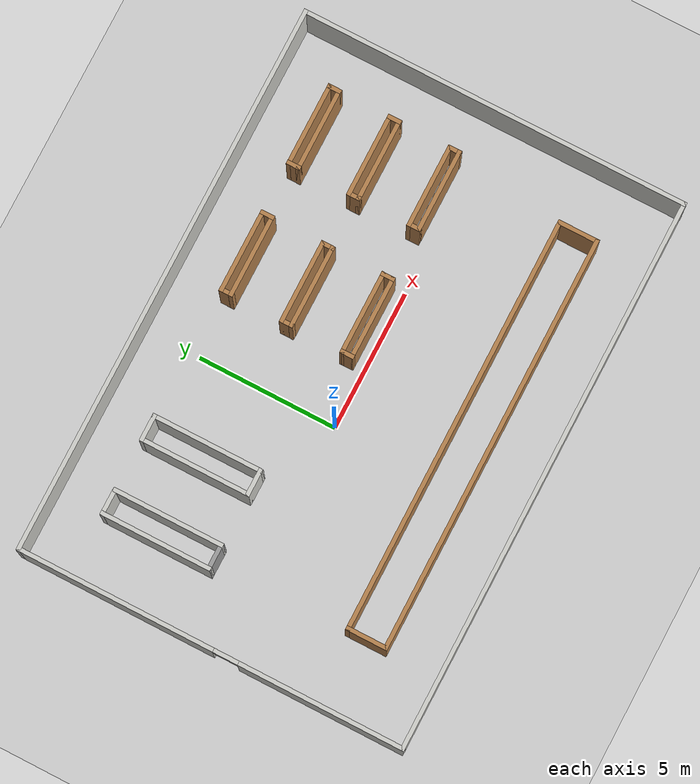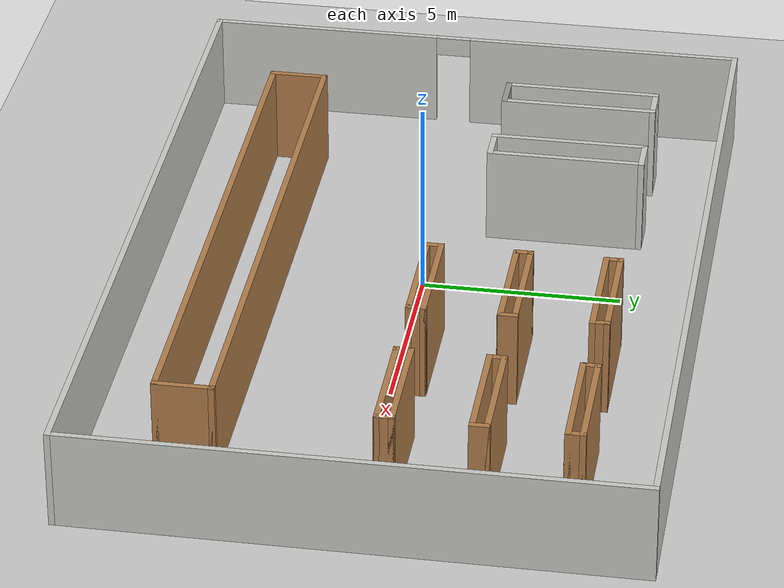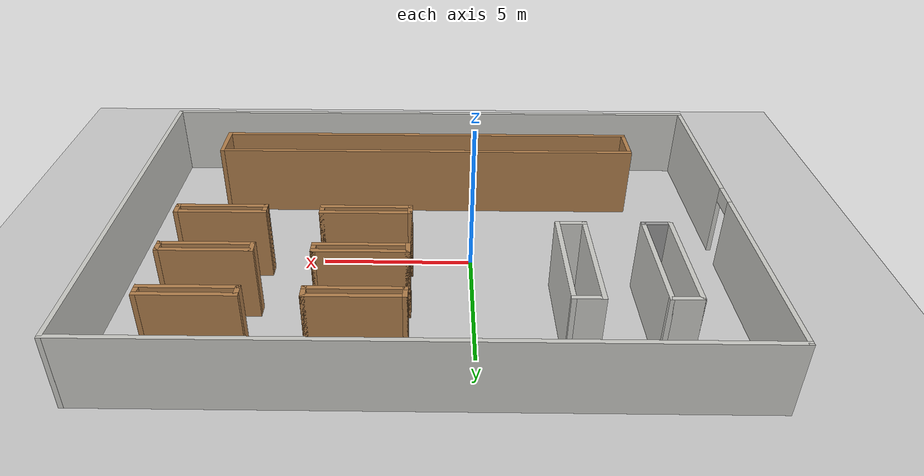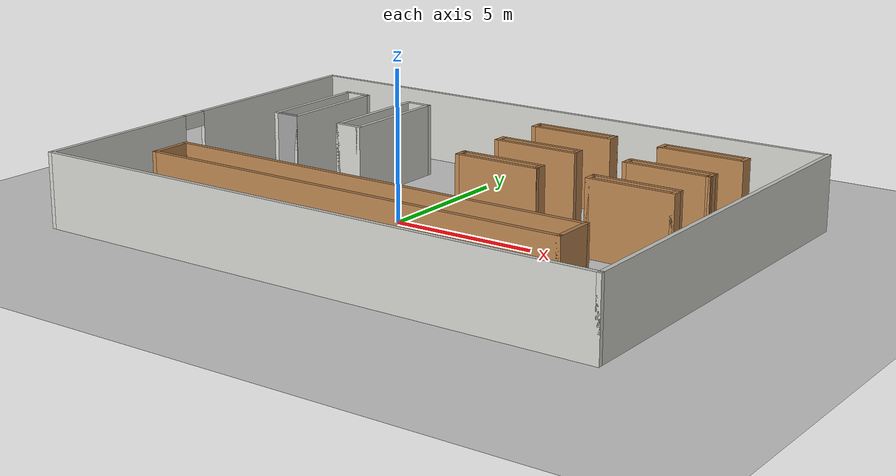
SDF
<sdf version="1.7">
 <world name="default">
  <light name="sun" type="directional">
   <pose>0 0 10 0 -0 0</pose>
   <diffuse>0.8 0.8 0.8 1</diffuse>
   <specular>0.2 0.2 0.2 1</specular>
   <attenuation>
    <range>1000</range>
    <constant>0.9</constant>
    <linear>0.01</linear>
    <quadratic>0.001</quadratic>
   </attenuation>
   <direction>-0.5 0.1 -0.9</direction>
   <spot><inner_angle>0</inner_angle><outer_angle>0</outer_angle><falloff>0</falloff></spot>
  </light>
  <model name="ground_plane">
   <static>1</static>
   <link name="link">
    <collision name="collision">
     <geometry><plane><normal>0 0 1</normal><size>100 100</size></plane></geometry>
     <surface><friction><ode><mu>100</mu><mu2>50</mu2></ode></friction></surface>
    </collision>
    <visual name="visual">
     <cast_shadows>0</cast_shadows>
     <geometry><plane><normal>0 0 1</normal><size>100 100</size></plane></geometry>
     <material>
      <script><uri>file://media/materials/scripts/gazebo.material</uri><name>Gazebo/Grey</name></script>
     </material>
    </visual>
   </link>
  </model>
  <gravity>0 0 -9.8</gravity>
  <magnetic_field>6e-06 2.3e-05 -4.2e-05</magnetic_field>
  <atmosphere type="adiabatic"/>
  <physics type="ode">
   <max_step_size>0.001</max_step_size>
   <real_time_factor>1</real_time_factor>
   <real_time_update_rate>1000</real_time_update_rate>
  </physics>
  <scene><ambient>0.4 0.4 0.4 1</ambient><background>0.7 0.7 0.7 1</background><shadows>1</shadows></scene>
  <audio><device>default</device></audio>
  <spherical_coordinates>
   <surface_model>EARTH_WGS84</surface_model>
   <latitude_deg>0</latitude_deg>
   <longitude_deg>0</longitude_deg>
   <elevation>0</elevation>
   <heading_deg>0</heading_deg>
  </spherical_coordinates>
  <model name="warehouse">
   <pose>1.50702 0.101425 0 0 -0 0</pose>
   <link name="Wall_0">
    <collision name="Wall_0_Collision">
     <geometry><box><size>3 0.15 2.5</size></box></geometry>
     <pose>0 0 1.25 0 -0 0</pose>
    </collision>
    <visual name="Wall_0_Visual">
     <pose>0 0 1.25 0 -0 0</pose>
     <geometry><box><size>3 0.15 2.5</size></box></geometry>
     <material>
      <script><uri>file://media/materials/scripts/gazebo.material</uri><name>Gazebo/Wood</name></script>
      <ambient>1 1 1 1</ambient>
     </material>
     <meta><layer>0</layer></meta>
    </visual>
    <pose>1.95 0.675 0 0 -0 0</pose>
   </link>
   <link name="Wall_1">
    <collision name="Wall_1_Collision">
     <geometry><box><size>0.5 0.15 2.5</size></box></geometry>
     <pose>0 0 1.25 0 -0 0</pose>
    </collision>
    <visual name="Wall_1_Visual">
     <pose>0 0 1.25 0 -0 0</pose>
     <geometry><box><size>0.5 0.15 2.5</size></box></geometry>
     <material>
      <script><uri>file://media/materials/scripts/gazebo.material</uri><name>Gazebo/Wood</name></script>
      <ambient>1 1 1 1</ambient>
     </material>
     <meta><layer>0</layer></meta>
    </visual>
    <pose>3.375 0.5 0 0 -0 -1.5708</pose>
   </link>
   <link name="Wall_13">
    <collision name="Wall_13_Collision">
     <geometry><box><size>3 0.15 2.5</size></box></geometry>
     <pose>0 0 1.25 0 -0 0</pose>
    </collision>
    <visual name="Wall_13_Visual">
     <pose>0 0 1.25 0 -0 0</pose>
     <geometry><box><size>3 0.15 2.5</size></box></geometry>
     <material>
      <script><uri>file://media/materials/scripts/gazebo.material</uri><name>Gazebo/Wood</name></script>
      <ambient>1 1 1 1</ambient>
     </material>
     <meta><layer>0</layer></meta>
    </visual>
    <pose>1.95 2.525 0 0 -0 3.14159</pose>
   </link>
   <link name="Wall_14">
    <collision name="Wall_14_Collision">
     <geometry><box><size>0.5 0.15 2.5</size></box></geometry>
     <pose>0 0 1.25 0 -0 0</pose>
    </collision>
    <visual name="Wall_14_Visual">
     <pose>0 0 1.25 0 -0 0</pose>
     <geometry><box><size>0.5 0.15 2.5</size></box></geometry>
     <material>
      <script><uri>file://media/materials/scripts/gazebo.material</uri><name>Gazebo/Wood</name></script>
      <ambient>1 1 1 1</ambient>
     </material>
     <meta><layer>0</layer></meta>
    </visual>
    <pose>0.525 2.7 0 0 -0 1.5708</pose>
   </link>
   <link name="Wall_15">
    <collision name="Wall_15_Collision">
     <geometry><box><size>3 0.15 2.5</size></box></geometry>
     <pose>0 0 1.25 0 -0 0</pose>
    </collision>
    <visual name="Wall_15_Visual">
     <pose>0 0 1.25 0 -0 0</pose>
     <geometry><box><size>3 0.15 2.5</size></box></geometry>
     <material>
      <script><uri>file://media/materials/scripts/gazebo.material</uri><name>Gazebo/Wood</name></script>
      <ambient>1 1 1 1</ambient>
     </material>
     <meta><layer>0</layer></meta>
    </visual>
    <pose>1.95 2.875 0 0 -0 0</pose>
   </link>
   <link name="Wall_16">
    <collision name="Wall_16_Collision">
     <geometry><box><size>0.5 0.15 2.5</size></box></geometry>
     <pose>0 0 1.25 0 -0 0</pose>
    </collision>
    <visual name="Wall_16_Visual">
     <pose>0 0 1.25 0 -0 0</pose>
     <geometry><box><size>0.5 0.15 2.5</size></box></geometry>
     <material>
      <script><uri>file://media/materials/scripts/gazebo.material</uri><name>Gazebo/Wood</name></script>
      <ambient>1 1 1 1</ambient>
     </material>
     <meta><layer>0</layer></meta>
    </visual>
    <pose>3.375 2.7 0 0 -0 -1.5708</pose>
   </link>
   <link name="Wall_18">
    <collision name="Wall_18_Collision">
     <geometry><box><size>3 0.15 2.5</size></box></geometry>
     <pose>0 0 1.25 0 -0 0</pose>
    </collision>
    <visual name="Wall_18_Visual">
     <pose>0 0 1.25 0 -0 0</pose>
     <geometry><box><size>3 0.15 2.5</size></box></geometry>
     <material>
      <script><uri>file://media/materials/scripts/gazebo.material</uri><name>Gazebo/Wood</name></script>
      <ambient>1 1 1 1</ambient>
     </material>
     <meta><layer>0</layer></meta>
    </visual>
    <pose>6.65 2.525 0 0 -0 0</pose>
   </link>
   <link name="Wall_19">
    <collision name="Wall_19_Collision">
     <geometry><box><size>0.5 0.15 2.5</size></box></geometry>
     <pose>0 0 1.25 0 -0 0</pose>
    </collision>
    <visual name="Wall_19_Visual">
     <pose>0 0 1.25 0 -0 0</pose>
     <geometry><box><size>0.5 0.15 2.5</size></box></geometry>
     <material>
      <script><uri>file://media/materials/scripts/gazebo.material</uri><name>Gazebo/Wood</name></script>
      <ambient>1 1 1 1</ambient>
     </material>
     <meta><layer>0</layer></meta>
    </visual>
    <pose>8.075 2.7 0 0 -0 1.5708</pose>
   </link>
   <link name="Wall_2">
    <collision name="Wall_2_Collision">
     <geometry><box><size>3 0.15 2.5</size></box></geometry>
     <pose>0 0 1.25 0 -0 0</pose>
    </collision>
    <visual name="Wall_2_Visual">
     <pose>0 0 1.25 0 -0 0</pose>
     <geometry><box><size>3 0.15 2.5</size></box></geometry>
     <material>
      <script><uri>file://media/materials/scripts/gazebo.material</uri><name>Gazebo/Wood</name></script>
      <ambient>1 1 1 1</ambient>
     </material>
     <meta><layer>0</layer></meta>
    </visual>
    <pose>1.95 0.325 0 0 -0 3.14159</pose>
   </link>
   <link name="Wall_20">
    <collision name="Wall_20_Collision">
     <geometry><box><size>3 0.15 2.5</size></box></geometry>
     <pose>0 0 1.25 0 -0 0</pose>
    </collision>
    <visual name="Wall_20_Visual">
     <pose>0 0 1.25 0 -0 0</pose>
     <geometry><box><size>3 0.15 2.5</size></box></geometry>
     <material>
      <script><uri>file://media/materials/scripts/gazebo.material</uri><name>Gazebo/Wood</name></script>
      <ambient>1 1 1 1</ambient>
     </material>
     <meta><layer>0</layer></meta>
    </visual>
    <pose>6.65 2.875 0 0 -0 3.14159</pose>
   </link>
   <link name="Wall_21">
    <collision name="Wall_21_Collision">
     <geometry><box><size>0.5 0.15 2.5</size></box></geometry>
     <pose>0 0 1.25 0 -0 0</pose>
    </collision>
    <visual name="Wall_21_Visual">
     <pose>0 0 1.25 0 -0 0</pose>
     <geometry><box><size>0.5 0.15 2.5</size></box></geometry>
     <material>
      <script><uri>file://media/materials/scripts/gazebo.material</uri><name>Gazebo/Wood</name></script>
      <ambient>1 1 1 1</ambient>
     </material>
     <meta><layer>0</layer></meta>
    </visual>
    <pose>5.225 2.7 0 0 -0 -1.5708</pose>
   </link>
   <link name="Wall_24">
    <collision name="Wall_24_Collision">
     <geometry><box><size>3 0.15 2.5</size></box></geometry>
     <pose>0 0 1.25 0 -0 0</pose>
    </collision>
    <visual name="Wall_24_Visual">
     <pose>0 0 1.25 0 -0 0</pose>
     <geometry><box><size>3 0.15 2.5</size></box></geometry>
     <material>
      <script><uri>file://media/materials/scripts/gazebo.material</uri><name>Gazebo/Wood</name></script>
      <ambient>1 1 1 1</ambient>
     </material>
     <meta><layer>0</layer></meta>
    </visual>
    <pose>1.95 4.725 0 0 -0 3.14159</pose>
   </link>
   <link name="Wall_25">
    <collision name="Wall_25_Collision">
     <geometry><box><size>0.5 0.15 2.5</size></box></geometry>
     <pose>0 0 1.25 0 -0 0</pose>
    </collision>
    <visual name="Wall_25_Visual">
     <pose>0 0 1.25 0 -0 0</pose>
     <geometry><box><size>0.5 0.15 2.5</size></box></geometry>
     <material>
      <script><uri>file://media/materials/scripts/gazebo.material</uri><name>Gazebo/Wood</name></script>
      <ambient>1 1 1 1</ambient>
     </material>
     <meta><layer>0</layer></meta>
    </visual>
    <pose>0.525 4.9 0 0 -0 1.5708</pose>
   </link>
   <link name="Wall_26">
    <collision name="Wall_26_Collision">
     <geometry><box><size>3 0.15 2.5</size></box></geometry>
     <pose>0 0 1.25 0 -0 0</pose>
    </collision>
    <visual name="Wall_26_Visual">
     <pose>0 0 1.25 0 -0 0</pose>
     <geometry><box><size>3 0.15 2.5</size></box></geometry>
     <material>
      <script><uri>file://media/materials/scripts/gazebo.material</uri><name>Gazebo/Wood</name></script>
      <ambient>1 1 1 1</ambient>
     </material>
     <meta><layer>0</layer></meta>
    </visual>
    <pose>1.95 5.075 0 0 -0 0</pose>
   </link>
   <link name="Wall_27">
    <collision name="Wall_27_Collision">
     <geometry><box><size>0.5 0.15 2.5</size></box></geometry>
     <pose>0 0 1.25 0 -0 0</pose>
    </collision>
    <visual name="Wall_27_Visual">
     <pose>0 0 1.25 0 -0 0</pose>
     <geometry><box><size>0.5 0.15 2.5</size></box></geometry>
     <material>
      <script><uri>file://media/materials/scripts/gazebo.material</uri><name>Gazebo/Wood</name></script>
      <ambient>1 1 1 1</ambient>
     </material>
     <meta><layer>0</layer></meta>
    </visual>
    <pose>3.375 4.9 0 0 -0 -1.5708</pose>
   </link>
   <link name="Wall_29">
    <collision name="Wall_29_Collision">
     <geometry><box><size>3 0.15 2.5</size></box></geometry>
     <pose>0 0 1.25 0 -0 0</pose>
    </collision>
    <visual name="Wall_29_Visual">
     <pose>0 0 1.25 0 -0 0</pose>
     <geometry><box><size>3 0.15 2.5</size></box></geometry>
     <material>
      <script><uri>file://media/materials/scripts/gazebo.material</uri><name>Gazebo/Wood</name></script>
      <ambient>1 1 1 1</ambient>
     </material>
     <meta><layer>0</layer></meta>
    </visual>
    <pose>6.65 4.725 0 0 -0 0</pose>
   </link>
   <link name="Wall_3">
    <collision name="Wall_3_Collision">
     <geometry><box><size>0.5 0.15 2.5</size></box></geometry>
     <pose>0 0 1.25 0 -0 0</pose>
    </collision>
    <visual name="Wall_3_Visual">
     <pose>0 0 1.25 0 -0 0</pose>
     <geometry><box><size>0.5 0.15 2.5</size></box></geometry>
     <material>
      <script><uri>file://media/materials/scripts/gazebo.material</uri><name>Gazebo/Wood</name></script>
      <ambient>1 1 1 1</ambient>
     </material>
     <meta><layer>0</layer></meta>
    </visual>
    <pose>0.525 0.5 0 0 -0 1.5708</pose>
   </link>
   <link name="Wall_30">
    <collision name="Wall_30_Collision">
     <geometry><box><size>0.5 0.15 2.5</size></box></geometry>
     <pose>0 0 1.25 0 -0 0</pose>
    </collision>
    <visual name="Wall_30_Visual">
     <pose>0 0 1.25 0 -0 0</pose>
     <geometry><box><size>0.5 0.15 2.5</size></box></geometry>
     <material>
      <script><uri>file://media/materials/scripts/gazebo.material</uri><name>Gazebo/Wood</name></script>
      <ambient>1 1 1 1</ambient>
     </material>
     <meta><layer>0</layer></meta>
    </visual>
    <pose>8.075 4.9 0 0 -0 1.5708</pose>
   </link>
   <link name="Wall_31">
    <collision name="Wall_31_Collision">
     <geometry><box><size>3 0.15 2.5</size></box></geometry>
     <pose>0 0 1.25 0 -0 0</pose>
    </collision>
    <visual name="Wall_31_Visual">
     <pose>0 0 1.25 0 -0 0</pose>
     <geometry><box><size>3 0.15 2.5</size></box></geometry>
     <material>
      <script><uri>file://media/materials/scripts/gazebo.material</uri><name>Gazebo/Wood</name></script>
      <ambient>1 1 1 1</ambient>
     </material>
     <meta><layer>0</layer></meta>
    </visual>
    <pose>6.65 5.075 0 0 -0 3.14159</pose>
   </link>
   <link name="Wall_32">
    <collision name="Wall_32_Collision">
     <geometry><box><size>0.5 0.15 2.5</size></box></geometry>
     <pose>0 0 1.25 0 -0 0</pose>
    </collision>
    <visual name="Wall_32_Visual">
     <pose>0 0 1.25 0 -0 0</pose>
     <geometry><box><size>0.5 0.15 2.5</size></box></geometry>
     <material>
      <script><uri>file://media/materials/scripts/gazebo.material</uri><name>Gazebo/Wood</name></script>
      <ambient>1 1 1 1</ambient>
     </material>
     <meta><layer>0</layer></meta>
    </visual>
    <pose>5.225 4.9 0 0 -0 -1.5708</pose>
   </link>
   <link name="Wall_38">
    <collision name="Wall_38_Collision">
     <geometry><box><size>20 0.15 2.5</size></box></geometry>
     <pose>0 0 1.25 0 -0 0</pose>
    </collision>
    <visual name="Wall_38_Visual">
     <pose>0 0 1.25 0 -0 0</pose>
     <geometry><box><size>20 0.15 2.5</size></box></geometry>
     <material>
      <script><uri>file://media/materials/scripts/gazebo.material</uri><name>Gazebo/CeilingTiled</name></script>
      <ambient>1 1 1 1</ambient>
     </material>
     <meta><layer>0</layer></meta>
    </visual>
    <pose>0 6.925 0 0 -0 3.14159</pose>
   </link>
   <link name="Wall_39">
    <pose>-9.925 0 0 0 -0 -1.5708</pose>
    <visual name="Wall_39_Visual_0">
     <pose>-3.43914 0 1.25 0 -0 0</pose>
     <geometry><box><size>7.12171 0.15 2.5</size></box></geometry>
     <material>
      <script><uri>file://media/materials/scripts/gazebo.material</uri><name>Gazebo/CeilingTiled</name></script>
      <ambient>1 1 1 1</ambient>
     </material>
     <meta><layer>0</layer></meta>
    </visual>
    <collision name="Wall_39_Collision_0">
     <geometry><box><size>7.12171 0.15 2.5</size></box></geometry>
     <pose>-3.43914 0 1.25 0 -0 0</pose>
    </collision>
    <visual name="Wall_39_Visual_1">
     <pose>4.01086 0 1.25 0 -0 0</pose>
     <geometry><box><size>5.97829 0.15 2.5</size></box></geometry>
     <material>
      <script><uri>file://media/materials/scripts/gazebo.material</uri><name>Gazebo/CeilingTiled</name></script>
      <ambient>1 1 1 1</ambient>
     </material>
     <meta><layer>0</layer></meta>
    </visual>
    <collision name="Wall_39_Collision_1">
     <geometry><box><size>5.97829 0.15 2.5</size></box></geometry>
     <pose>4.01086 0 1.25 0 -0 0</pose>
    </collision>
    <visual name="Wall_39_Visual_2">
     <pose>0.571709 0 2.25 0 -0 0</pose>
     <geometry><box><size>0.9 0.15 0.5</size></box></geometry>
     <material>
      <script><uri>file://media/materials/scripts/gazebo.material</uri><name>Gazebo/CeilingTiled</name></script>
      <ambient>1 1 1 1</ambient>
     </material>
     <meta><layer>0</layer></meta>
    </visual>
    <collision name="Wall_39_Collision_2">
     <geometry><box><size>0.9 0.15 0.5</size></box></geometry>
     <pose>0.571709 0 2.25 0 -0 0</pose>
    </collision>
   </link>
   <link name="Wall_40">
    <collision name="Wall_40_Collision">
     <geometry><box><size>20 0.15 2.5</size></box></geometry>
     <pose>0 0 1.25 0 -0 0</pose>
    </collision>
    <visual name="Wall_40_Visual">
     <pose>0 0 1.25 0 -0 0</pose>
     <geometry><box><size>20 0.15 2.5</size></box></geometry>
     <material>
      <script><uri>file://media/materials/scripts/gazebo.material</uri><name>Gazebo/CeilingTiled</name></script>
      <ambient>1 1 1 1</ambient>
     </material>
     <meta><layer>0</layer></meta>
    </visual>
    <pose>0 -6.925 0 0 -0 0</pose>
   </link>
   <link name="Wall_42">
    <collision name="Wall_42_Collision">
     <geometry><box><size>14 0.15 2.5</size></box></geometry>
     <pose>0 0 1.25 0 -0 0</pose>
    </collision>
    <visual name="Wall_42_Visual">
     <pose>0 0 1.25 0 -0 0</pose>
     <geometry><box><size>14 0.15 2.5</size></box></geometry>
     <material>
      <script><uri>file://media/materials/scripts/gazebo.material</uri><name>Gazebo/CeilingTiled</name></script>
      <ambient>1 1 1 1</ambient>
     </material>
     <meta><layer>0</layer></meta>
    </visual>
    <pose>9.925 0 0 0 -0 -1.5708</pose>
   </link>
   <link name="Wall_45">
    <collision name="Wall_45_Collision">
     <geometry><box><size>4 0.15 2.5</size></box></geometry>
     <pose>0 0 1.25 0 -0 0</pose>
    </collision>
    <visual name="Wall_45_Visual">
     <pose>0 0 1.25 0 -0 0</pose>
     <geometry><box><size>4 0.15 2.5</size></box></geometry>
     <material>
      <script><uri>file://media/materials/scripts/gazebo.material</uri><name>Gazebo/CeilingTiled</name></script>
      <ambient>1 1 1 1</ambient>
     </material>
     <meta><layer>0</layer></meta>
    </visual>
    <pose>-7.67666 3.15011 0 0 -0 -1.5708</pose>
   </link>
   <link name="Wall_46">
    <collision name="Wall_46_Collision">
     <geometry><box><size>1 0.15 2.5</size></box></geometry>
     <pose>0 0 1.25 0 -0 0</pose>
    </collision>
    <visual name="Wall_46_Visual">
     <pose>0 0 1.25 0 -0 0</pose>
     <geometry><box><size>1 0.15 2.5</size></box></geometry>
     <material>
      <script><uri>file://media/materials/scripts/gazebo.material</uri><name>Gazebo/Grey</name></script>
      <ambient>1 1 1 1</ambient>
     </material>
     <meta><layer>0</layer></meta>
    </visual>
    <pose>-7.25166 1.22511 0 0 -0 0</pose>
   </link>
   <link name="Wall_47">
    <collision name="Wall_47_Collision">
     <geometry><box><size>4 0.15 2.5</size></box></geometry>
     <pose>0 0 1.25 0 -0 0</pose>
    </collision>
    <visual name="Wall_47_Visual">
     <pose>0 0 1.25 0 -0 0</pose>
     <geometry><box><size>4 0.15 2.5</size></box></geometry>
     <material>
      <script><uri>file://media/materials/scripts/gazebo.material</uri><name>Gazebo/CeilingTiled</name></script>
      <ambient>1 1 1 1</ambient>
     </material>
     <meta><layer>0</layer></meta>
    </visual>
    <pose>-6.82666 3.15011 0 0 -0 1.5708</pose>
   </link>
   <link name="Wall_48">
    <collision name="Wall_48_Collision">
     <geometry><box><size>1 0.15 2.5</size></box></geometry>
     <pose>0 0 1.25 0 -0 0</pose>
    </collision>
    <visual name="Wall_48_Visual">
     <pose>0 0 1.25 0 -0 0</pose>
     <geometry><box><size>1 0.15 2.5</size></box></geometry>
     <material>
      <script><uri>file://media/materials/scripts/gazebo.material</uri><name>Gazebo/CeilingTiled</name></script>
      <ambient>1 1 1 1</ambient>
     </material>
     <meta><layer>0</layer></meta>
    </visual>
    <pose>-7.25166 5.07511 0 0 -0 3.14159</pose>
   </link>
   <link name="Wall_51">
    <collision name="Wall_51_Collision">
     <geometry><box><size>4 0.15 2.5</size></box></geometry>
     <pose>0 0 1.25 0 -0 0</pose>
    </collision>
    <visual name="Wall_51_Visual">
     <pose>0 0 1.25 0 -0 0</pose>
     <geometry><box><size>4 0.15 2.5</size></box></geometry>
     <material>
      <script><uri>file://media/materials/scripts/gazebo.material</uri><name>Gazebo/CeilingTiled</name></script>
      <ambient>1 1 1 1</ambient>
     </material>
     <meta><layer>0</layer></meta>
    </visual>
    <pose>-4.97666 3.15011 0 0 -0 -1.5708</pose>
   </link>
   <link name="Wall_52">
    <collision name="Wall_52_Collision">
     <geometry><box><size>1 0.15 2.5</size></box></geometry>
     <pose>0 0 1.25 0 -0 0</pose>
    </collision>
    <visual name="Wall_52_Visual">
     <pose>0 0 1.25 0 -0 0</pose>
     <geometry><box><size>1 0.15 2.5</size></box></geometry>
     <material>
      <script><uri>file://media/materials/scripts/gazebo.material</uri><name>Gazebo/CeilingTiled</name></script>
      <ambient>1 1 1 1</ambient>
     </material>
     <meta><layer>0</layer></meta>
    </visual>
    <pose>-4.55166 1.22511 0 0 -0 0</pose>
   </link>
   <link name="Wall_53">
    <collision name="Wall_53_Collision">
     <geometry><box><size>4 0.15 2.5</size></box></geometry>
     <pose>0 0 1.25 0 -0 0</pose>
    </collision>
    <visual name="Wall_53_Visual">
     <pose>0 0 1.25 0 -0 0</pose>
     <geometry><box><size>4 0.15 2.5</size></box></geometry>
     <material>
      <script><uri>file://media/materials/scripts/gazebo.material</uri><name>Gazebo/CeilingTiled</name></script>
      <ambient>1 1 1 1</ambient>
     </material>
     <meta><layer>0</layer></meta>
    </visual>
    <pose>-4.12666 3.15011 0 0 -0 1.5708</pose>
   </link>
   <link name="Wall_54">
    <collision name="Wall_54_Collision">
     <geometry><box><size>1 0.15 2.5</size></box></geometry>
     <pose>0 0 1.25 0 -0 0</pose>
    </collision>
    <visual name="Wall_54_Visual">
     <pose>0 0 1.25 0 -0 0</pose>
     <geometry><box><size>1 0.15 2.5</size></box></geometry>
     <material>
      <script><uri>file://media/materials/scripts/gazebo.material</uri><name>Gazebo/CeilingTiled</name></script>
      <ambient>1 1 1 1</ambient>
     </material>
     <meta><layer>0</layer></meta>
    </visual>
    <pose>-4.55166 5.07511 0 0 -0 3.14159</pose>
   </link>
   <link name="Wall_56">
    <collision name="Wall_56_Collision">
     <geometry><box><size>15 0.15 2.5</size></box></geometry>
     <pose>0 0 1.25 0 -0 0</pose>
    </collision>
    <visual name="Wall_56_Visual">
     <pose>0 0 1.25 0 -0 0</pose>
     <geometry><box><size>15 0.15 2.5</size></box></geometry>
     <material>
      <script><uri>file://media/materials/scripts/gazebo.material</uri><name>Gazebo/Wood</name></script>
      <ambient>1 1 1 1</ambient>
     </material>
     <meta><layer>0</layer></meta>
    </visual>
    <pose>0.099031 -4.97165 0 0 -0 0</pose>
   </link>
   <link name="Wall_57">
    <collision name="Wall_57_Collision">
     <geometry><box><size>1.5 0.15 2.5</size></box></geometry>
     <pose>0 0 1.25 0 -0 0</pose>
    </collision>
    <visual name="Wall_57_Visual">
     <pose>0 0 1.25 0 -0 0</pose>
     <geometry><box><size>1.5 0.15 2.5</size></box></geometry>
     <material>
      <script><uri>file://media/materials/scripts/gazebo.material</uri><name>Gazebo/Wood</name></script>
      <ambient>1 1 1 1</ambient>
     </material>
     <meta><layer>0</layer></meta>
    </visual>
    <pose>7.52403 -4.29665 0 0 -0 1.5708</pose>
   </link>
   <link name="Wall_6">
    <collision name="Wall_6_Collision">
     <geometry><box><size>0.5 0.15 2.5</size></box></geometry>
     <pose>0 0 1.25 0 -0 0</pose>
    </collision>
    <visual name="Wall_6_Visual">
     <pose>0 0 1.25 0 -0 0</pose>
     <geometry><box><size>0.5 0.15 2.5</size></box></geometry>
     <material>
      <script><uri>file://media/materials/scripts/gazebo.material</uri><name>Gazebo/Wood</name></script>
      <ambient>1 1 1 1</ambient>
     </material>
     <meta><layer>0</layer></meta>
    </visual>
    <pose>5.225 0.5 0 0 -0 -1.5708</pose>
   </link>
   <link name="Wall_60">
    <collision name="Wall_60_Collision">
     <geometry><box><size>15 0.15 2.5</size></box></geometry>
     <pose>0 0 1.25 0 -0 0</pose>
    </collision>
    <visual name="Wall_60_Visual">
     <pose>0 0 1.25 0 -0 0</pose>
     <geometry><box><size>15 0.15 2.5</size></box></geometry>
     <material>
      <script><uri>file://media/materials/scripts/gazebo.material</uri><name>Gazebo/Wood</name></script>
      <ambient>1 1 1 1</ambient>
     </material>
     <meta><layer>0</layer></meta>
    </visual>
    <pose>0.099031 -3.62165 0 0 -0 3.14159</pose>
   </link>
   <link name="Wall_61">
    <collision name="Wall_61_Collision">
     <geometry><box><size>1.5 0.15 2.5</size></box></geometry>
     <pose>0 0 1.25 0 -0 0</pose>
    </collision>
    <visual name="Wall_61_Visual">
     <pose>0 0 1.25 0 -0 0</pose>
     <geometry><box><size>1.5 0.15 2.5</size></box></geometry>
     <material>
      <script><uri>file://media/materials/scripts/gazebo.material</uri><name>Gazebo/Wood</name></script>
      <ambient>1 1 1 1</ambient>
     </material>
     <meta><layer>0</layer></meta>
    </visual>
    <pose>-7.32597 -4.29665 0 0 -0 -1.5708</pose>
   </link>
   <link name="Wall_7">
    <collision name="Wall_7_Collision">
     <geometry><box><size>3 0.15 2.5</size></box></geometry>
     <pose>0 0 1.25 0 -0 0</pose>
    </collision>
    <visual name="Wall_7_Visual">
     <pose>0 0 1.25 0 -0 0</pose>
     <geometry><box><size>3 0.15 2.5</size></box></geometry>
     <material>
      <script><uri>file://media/materials/scripts/gazebo.material</uri><name>Gazebo/Wood</name></script>
      <ambient>1 1 1 1</ambient>
     </material>
     <meta><layer>0</layer></meta>
    </visual>
    <pose>6.65 0.325 0 0 -0 0</pose>
   </link>
   <link name="Wall_8">
    <collision name="Wall_8_Collision">
     <geometry><box><size>0.5 0.15 2.5</size></box></geometry>
     <pose>0 0 1.25 0 -0 0</pose>
    </collision>
    <visual name="Wall_8_Visual">
     <pose>0 0 1.25 0 -0 0</pose>
     <geometry><box><size>0.5 0.15 2.5</size></box></geometry>
     <material>
      <script><uri>file://media/materials/scripts/gazebo.material</uri><name>Gazebo/Wood</name></script>
      <ambient>1 1 1 1</ambient>
     </material>
     <meta><layer>0</layer></meta>
    </visual>
    <pose>8.075 0.5 0 0 -0 1.5708</pose>
   </link>
   <link name="Wall_9">
    <collision name="Wall_9_Collision">
     <geometry><box><size>3 0.15 2.5</size></box></geometry>
     <pose>0 0 1.25 0 -0 0</pose>
    </collision>
    <visual name="Wall_9_Visual">
     <pose>0 0 1.25 0 -0 0</pose>
     <geometry><box><size>3 0.15 2.5</size></box></geometry>
     <material>
      <script><uri>file://media/materials/scripts/gazebo.material</uri><name>Gazebo/Wood</name></script>
      <ambient>1 1 1 1</ambient>
     </material>
     <meta><layer>0</layer></meta>
    </visual>
    <pose>6.65 0.675 0 0 -0 3.14159</pose>
   </link>
   <static>1</static>
  </model>
 </world>
</sdf>
